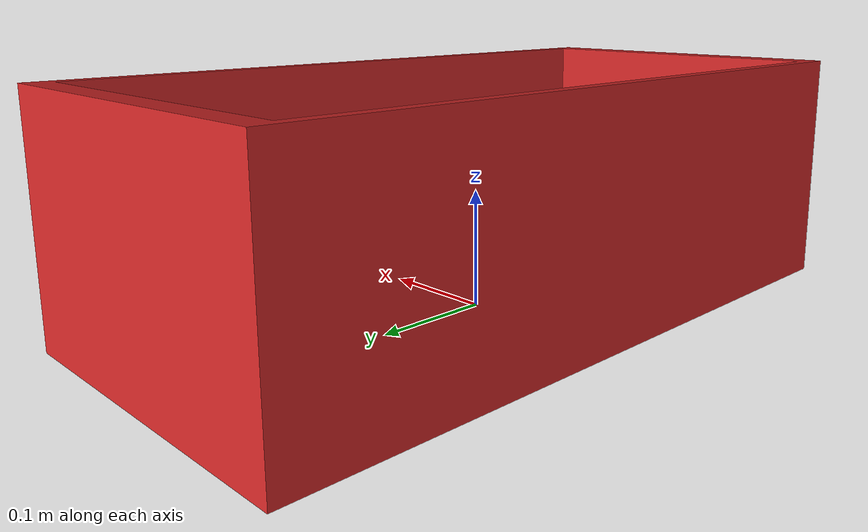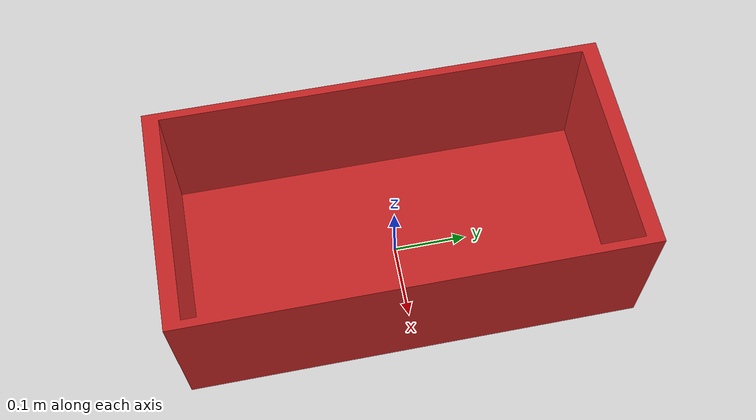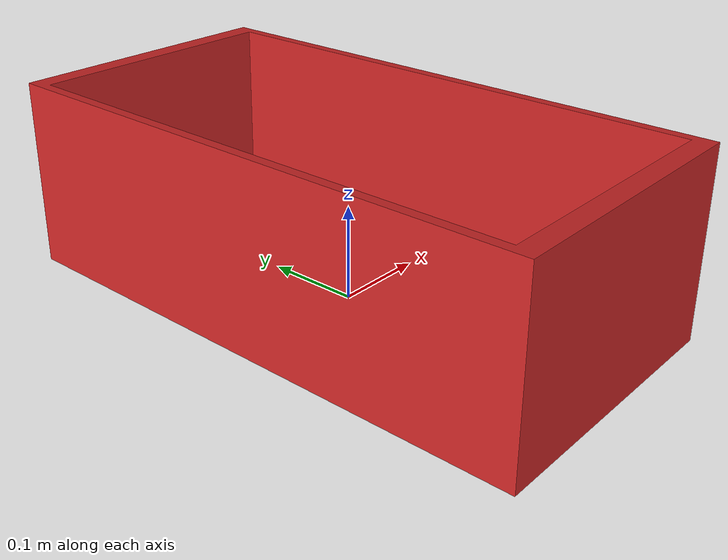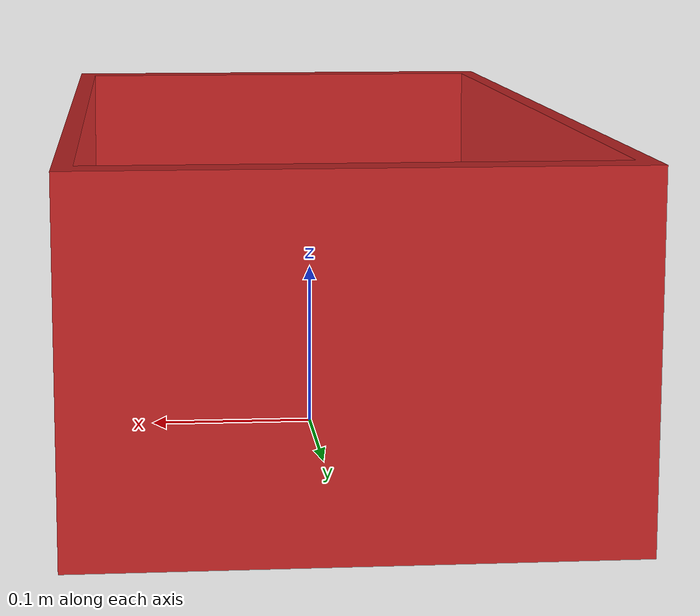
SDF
<?xml version="1.0" ?>

<sdf version="1.4">
  <model name="rect_bin_orange">

    <static>false</static>

    <link name="link">

      <collision name="collision">
        <pose>0 0 0 0 0 0</pose>
        <geometry>
          <mesh>
            <uri>model://rect_bin_orange/meshes/dropbox.dae</uri>
          </mesh>
        </geometry>
      </collision>

      <visual name="visual">
        <geometry>
          <mesh>
            <uri>model://rect_bin_orange/meshes/dropbox.dae</uri>
          </mesh>
        </geometry>
        <material>
          <script>
            <uri>file://media/materials/scripts/gazebo.material</uri>
            <name>Gazebo/Red</name>
          </script>
        </material>
      </visual>

    </link>

  </model>
</sdf>
